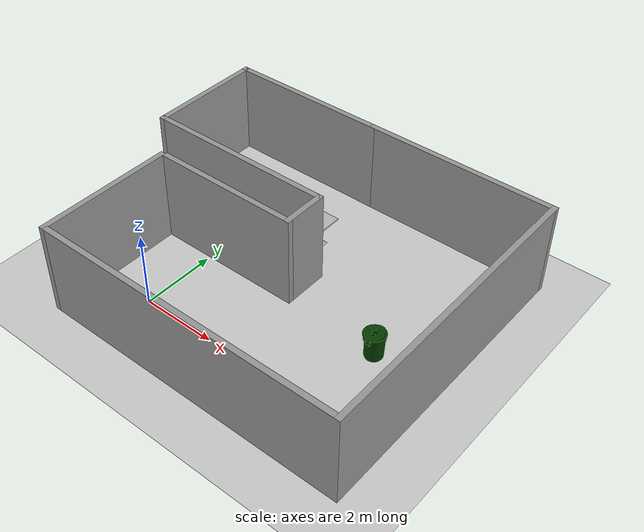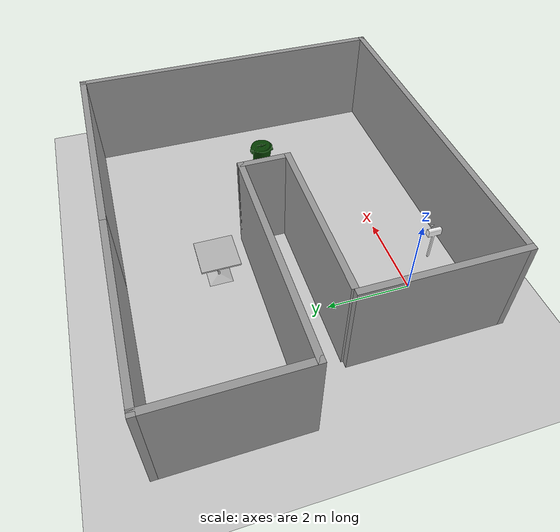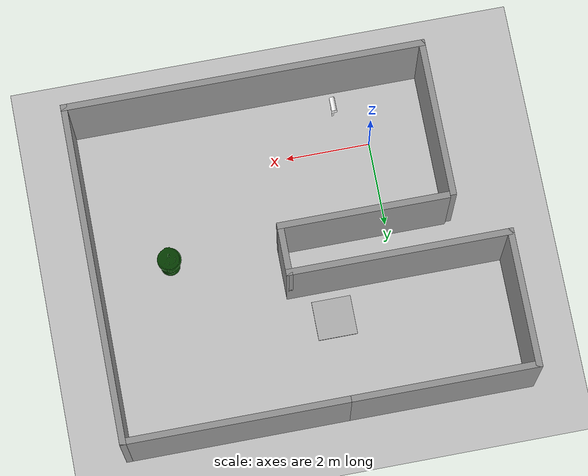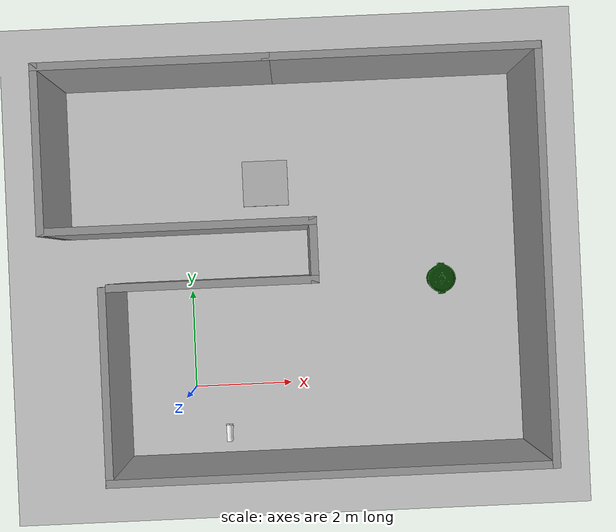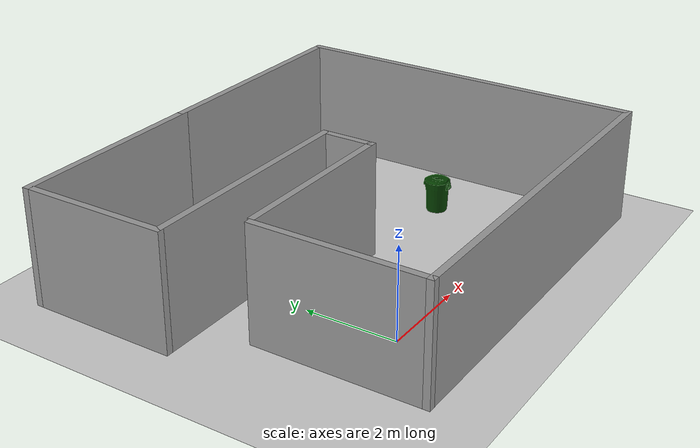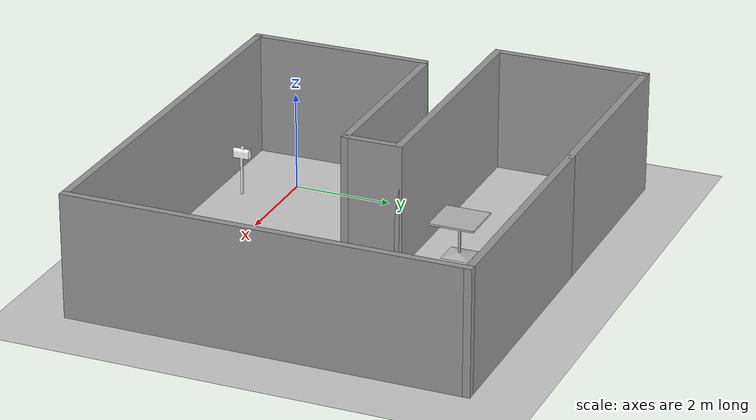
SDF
<sdf version="1.6">
 <world name="default">
  <light name="sun" type="directional">
   <pose>0 0 10 0 -0 0</pose>
   <diffuse>0.8 0.8 0.8 1</diffuse>
   <specular>0.2 0.2 0.2 1</specular>
   <attenuation>
    <range>1000</range>
    <constant>0.9</constant>
    <linear>0.01</linear>
    <quadratic>0.001</quadratic>
   </attenuation>
   <direction>-0.5 0.1 -0.9</direction>
  </light>
  <model name="ground_plane">
   <static>1</static>
   <link name="link">
    <collision name="collision">
     <geometry><plane><normal>0 0 1</normal><size>100 100</size></plane></geometry>
     <surface>
      <contact><collide_bitmask>65535</collide_bitmask></contact>
      <friction><ode><mu>100</mu><mu2>50</mu2></ode></friction>
     </surface>
    </collision>
    <visual name="visual">
     <cast_shadows>0</cast_shadows>
     <geometry><plane><normal>0 0 1</normal><size>100 100</size></plane></geometry>
     <material>
      <script><uri>file://media/materials/scripts/gazebo.material</uri><name>Gazebo/Grey</name></script>
     </material>
    </visual>
   </link>
  </model>
  <gravity>0 0 -9.8</gravity>
  <magnetic_field>6e-06 2.3e-05 -4.2e-05</magnetic_field>
  <atmosphere type="adiabatic"/>
  <physics name="default_physics" default="0" type="ode">
   <max_step_size>0.001</max_step_size>
   <real_time_factor>1</real_time_factor>
   <real_time_update_rate>1000</real_time_update_rate>
  </physics>
  <scene><ambient>0.4 0.4 0.4 1</ambient><background>0.7 0.7 0.7 1</background><shadows>1</shadows></scene>
  <spherical_coordinates>
   <surface_model>EARTH_WGS84</surface_model>
   <latitude_deg>0</latitude_deg>
   <longitude_deg>0</longitude_deg>
   <elevation>0</elevation>
   <heading_deg>0</heading_deg>
  </spherical_coordinates>
  <model name="ways">
   <pose>2.1628 2.44401 0 0 -0 0</pose>
   <link name="Wall_12">
    <collision name="Wall_12_Collision">
     <geometry><box><size>1.25 0.15 2.5</size></box></geometry>
     <pose>0 0 1.25 0 -0 0</pose>
    </collision>
    <visual name="Wall_12_Visual">
     <pose>0 0 1.25 0 -0 0</pose>
     <geometry><box><size>1.25 0.15 2.5</size></box></geometry>
     <material>
      <script><uri>file://media/materials/scripts/gazebo.material</uri><name>Gazebo/Grey</name></script>
      <ambient>1 1 1 1</ambient>
     </material>
     <meta><layer>0</layer></meta>
    </visual>
    <pose>0.375 0.275 0 0 -0 -1.5708</pose>
   </link>
   <link name="Wall_13">
    <collision name="Wall_13_Collision">
     <geometry><box><size>4 0.15 2.5</size></box></geometry>
     <pose>0 0 1.25 0 -0 0</pose>
    </collision>
    <visual name="Wall_13_Visual">
     <pose>0 0 1.25 0 -0 0</pose>
     <geometry><box><size>4 0.15 2.5</size></box></geometry>
     <material>
      <script><uri>file://media/materials/scripts/gazebo.material</uri><name>Gazebo/Grey</name></script>
      <ambient>1 1 1 1</ambient>
     </material>
     <meta><layer>0</layer></meta>
    </visual>
    <pose>-1.55 -0.275 0 0 -0 3.14159</pose>
   </link>
   <link name="Wall_15">
    <collision name="Wall_15_Collision">
     <geometry><box><size>3.75 0.15 2.5</size></box></geometry>
     <pose>0 0 1.25 0 -0 0</pose>
    </collision>
    <visual name="Wall_15_Visual">
     <pose>0 0 1.25 0 -0 0</pose>
     <geometry><box><size>3.75 0.15 2.5</size></box></geometry>
     <material>
      <script><uri>file://media/materials/scripts/gazebo.material</uri><name>Gazebo/Grey</name></script>
      <ambient>1 1 1 1</ambient>
     </material>
     <meta><layer>0</layer></meta>
    </visual>
    <pose>-3.625 -2.125 0 0 -0 1.5708</pose>
   </link>
   <link name="Wall_2">
    <collision name="Wall_2_Collision">
     <geometry><box><size>8 0.15 2.5</size></box></geometry>
     <pose>0 0 1.25 0 -0 0</pose>
    </collision>
    <visual name="Wall_2_Visual">
     <pose>0 0 1.25 0 -0 0</pose>
     <geometry><box><size>8 0.15 2.5</size></box></geometry>
     <material>
      <script><uri>file://media/materials/scripts/gazebo.material</uri><name>Gazebo/Grey</name></script>
      <ambient>1 1 1 1</ambient>
     </material>
     <meta><layer>0</layer></meta>
    </visual>
    <pose>4.725 0 0 0 -0 1.5708</pose>
   </link>
   <link name="Wall_4">
    <collision name="Wall_4_Collision">
     <geometry><box><size>8.5 0.15 2.5</size></box></geometry>
     <pose>0 0 1.25 0 -0 0</pose>
    </collision>
    <visual name="Wall_4_Visual">
     <pose>0 0 1.25 0 -0 0</pose>
     <geometry><box><size>8.5 0.15 2.5</size></box></geometry>
     <material>
      <script><uri>file://media/materials/scripts/gazebo.material</uri><name>Gazebo/Grey</name></script>
      <ambient>1 1 1 1</ambient>
     </material>
     <meta><layer>0</layer></meta>
    </visual>
    <pose>0.55 -3.925 0 0 -0 3.14159</pose>
   </link>
   <link name="Wall_6">
    <collision name="Wall_6_Collision">
     <geometry><box><size>5.25 0.15 2.5</size></box></geometry>
     <pose>0 0 1.25 0 -0 0</pose>
    </collision>
    <visual name="Wall_6_Visual">
     <pose>0 0 1.25 0 -0 0</pose>
     <geometry><box><size>5.25 0.15 2.5</size></box></geometry>
     <material>
      <script><uri>file://media/materials/scripts/gazebo.material</uri><name>Gazebo/Grey</name></script>
      <ambient>1 1 1 1</ambient>
     </material>
     <meta><layer>0</layer></meta>
    </visual>
    <pose>2.175 3.925 0 0 -0 3.14159</pose>
   </link>
   <link name="Wall_7">
    <collision name="Wall_7_Collision">
     <geometry><box><size>4.5 0.15 2.5</size></box></geometry>
     <pose>0 0 1.25 0 -0 0</pose>
    </collision>
    <visual name="Wall_7_Visual">
     <pose>0 0 1.25 0 -0 0</pose>
     <geometry><box><size>4.5 0.15 2.5</size></box></geometry>
     <material>
      <script><uri>file://media/materials/scripts/gazebo.material</uri><name>Gazebo/Grey</name></script>
      <ambient>1 1 1 1</ambient>
     </material>
     <meta><layer>0</layer></meta>
    </visual>
    <pose>-2.55 3.925 0 0 -0 3.14159</pose>
   </link>
   <link name="Wall_8">
    <collision name="Wall_8_Collision">
     <geometry><box><size>3.25 0.15 2.5</size></box></geometry>
     <pose>0 0 1.25 0 -0 0</pose>
    </collision>
    <visual name="Wall_8_Visual">
     <pose>0 0 1.25 0 -0 0</pose>
     <geometry><box><size>3.25 0.15 2.5</size></box></geometry>
     <material>
      <script><uri>file://media/materials/scripts/gazebo.material</uri><name>Gazebo/Grey</name></script>
      <ambient>1 1 1 1</ambient>
     </material>
     <meta><layer>0</layer></meta>
    </visual>
    <pose>-4.725 2.375 0 0 -0 -1.5708</pose>
   </link>
   <link name="Wall_9">
    <collision name="Wall_9_Collision">
     <geometry><box><size>5.25 0.15 2.5</size></box></geometry>
     <pose>0 0 1.25 0 -0 0</pose>
    </collision>
    <visual name="Wall_9_Visual">
     <pose>0 0 1.25 0 -0 0</pose>
     <geometry><box><size>5.25 0.15 2.5</size></box></geometry>
     <material>
      <script><uri>file://media/materials/scripts/gazebo.material</uri><name>Gazebo/Grey</name></script>
      <ambient>1 1 1 1</ambient>
     </material>
     <meta><layer>0</layer></meta>
    </visual>
    <pose>-2.175 0.825 0 0 -0 0</pose>
   </link>
   <static>1</static>
  </model>
  <model name="Mailbox">
   <link name="link">
    <collision name="collision">
     <geometry><mesh><uri>model://mailbox/meshes/mailbox.dae</uri></mesh></geometry>
    </collision>
    <visual name="visual">
     <geometry><mesh><uri>model://mailbox/meshes/mailbox.dae</uri></mesh></geometry>
     <material>
      <script>
       <uri>model://mailbox/materials/scripts</uri>
       <uri>model://mailbox/materials/textures</uri>
       <name>Mailbox/Diffuse</name>
      </script>
     </material>
    </visual>
    <inertial>
     <inertia><ixx>1</ixx><ixy>0</ixy><ixz>0</ixz><iyy>1</iyy><iyz>0</iyz><izz>1</izz></inertia>
     <mass>1</mass>
    </inertial>
   </link>
   <pose>0.709127 -0.873999 -9e-06 -7e-06 1e-06 -0</pose>
  </model>
  <model name="cafe_table">
   <static>1</static>
   <link name="link">
    <collision name="surface">
     <pose>0 0 0.755 0 -0 0</pose>
     <geometry><box><size>0.913 0.913 0.04</size></box></geometry>
    </collision>
    <collision name="column">
     <pose>0 0 0.37 0 -0 0</pose>
     <geometry><box><size>0.042 0.042 0.74</size></box></geometry>
    </collision>
    <collision name="base">
     <pose>0 0 0.02 0 -0 0</pose>
     <geometry><box><size>0.56 0.56 0.04</size></box></geometry>
    </collision>
    <visual name="visual">
     <geometry><mesh><uri>model://cafe_table/meshes/cafe_table.dae</uri></mesh></geometry>
    </visual>
   </link>
   <pose>1.64021 4.14276 0 0 -0 0</pose>
  </model>
  <model name="first_2015_trash_can">
   <link name="link">
    <inertial>
     <pose>0 0 0.3683 0 -0 0</pose>
     <mass>4.83076</mass>
     <inertia>
      <ixx>0.281534</ixx>
      <ixy>0</ixy>
      <ixz>0</ixz>
      <iyy>0.281534</iyy>
      <iyz>0</iyz>
      <izz>0.126223</izz>
     </inertia>
    </inertial>
    <visual name="visual">
     <geometry><mesh><uri>model://first_2015_trash_can/meshes/trash_can.dae</uri></mesh></geometry>
    </visual>
    <collision name="collision">
     <geometry><mesh><uri>model://first_2015_trash_can/meshes/trash_can.dae</uri></mesh></geometry>
    </collision>
   </link>
   <pose>5.15467 2.05613 -1.1e-05 -4e-06 1.7e-05 -2.4e-05</pose>
  </model>
 </world>
</sdf>
